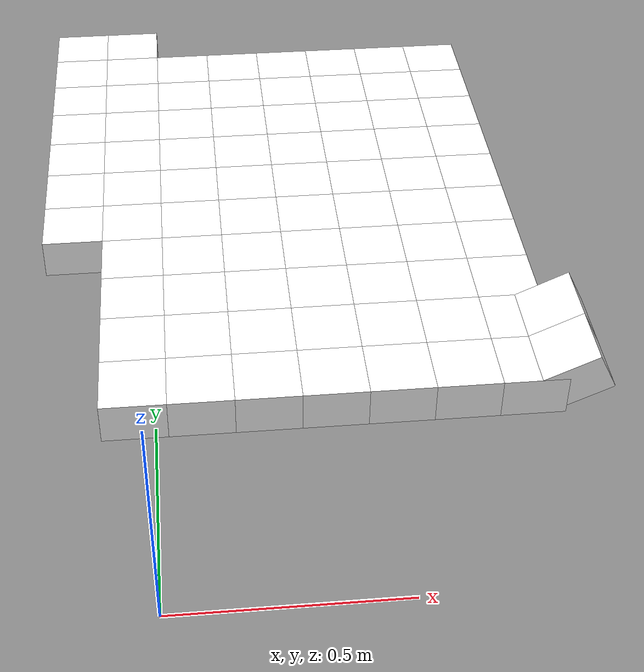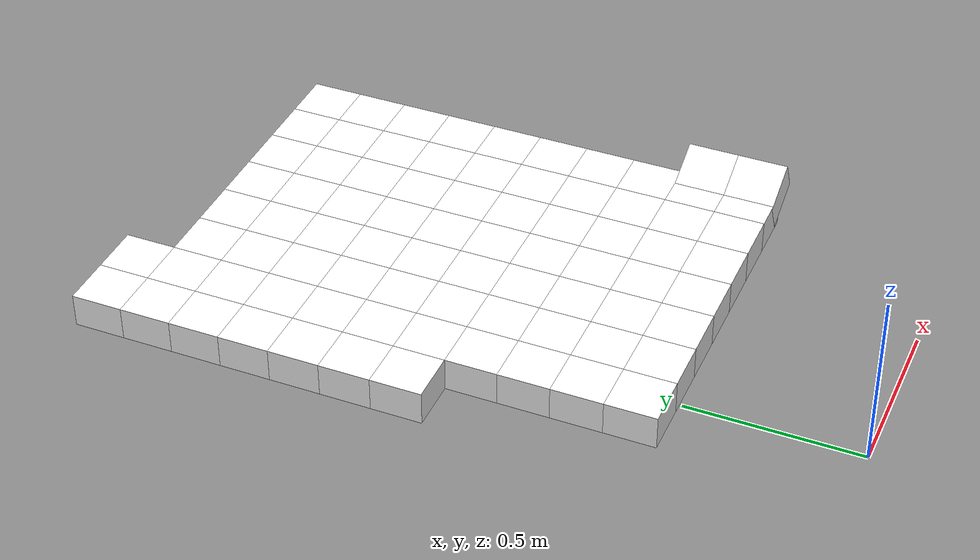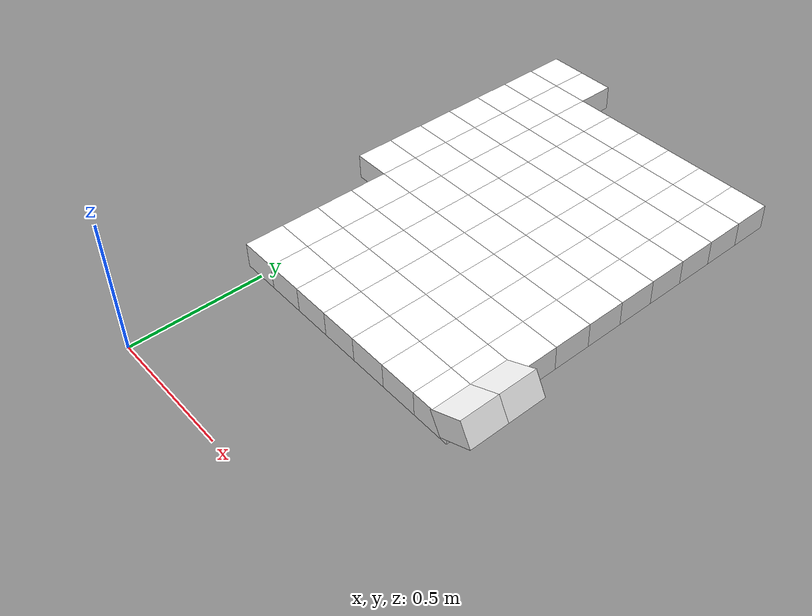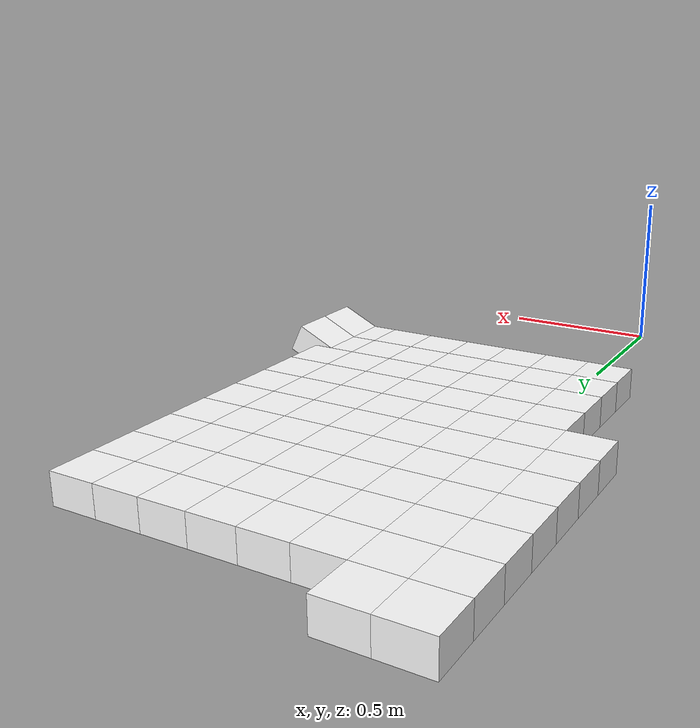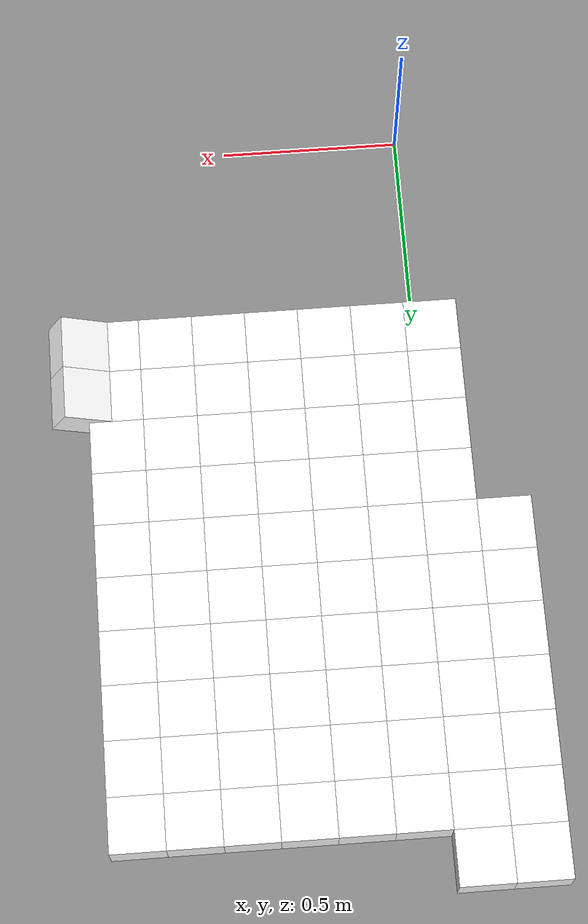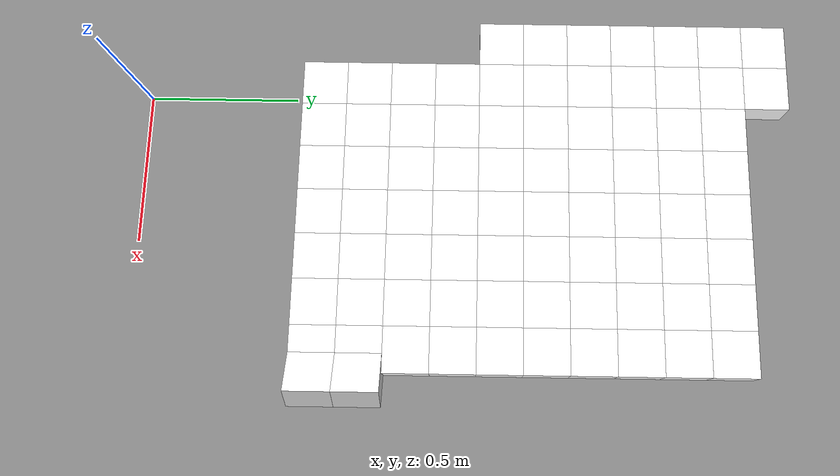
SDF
<sdf version="1.7">
 <world name="default">
  <include><uri>model://sun</uri></include>
  <model name="static_environment">
   <static>true</static>
   <link name="region_13">
    <pose>-0.05000000000000049 0.6 0.0 0.0 0.0 0.0</pose>
    <collision name="region_13_collision">
     <geometry><box><size>0.15 0.15 0.1</size></box></geometry>
     <surface><friction><ode><mu>1.0</mu><mu2>1.0</mu2></ode></friction></surface>
    </collision>
    <visual name="region_13_visual">
     <geometry><box><size>0.15 0.15 0.1</size></box></geometry>
     <material><ambient>1.0 1.0 1.0 1.0</ambient><diffuse>1.0 1.0 1.0 1.0</diffuse></material>
    </visual>
   </link>
   <link name="region_14">
    <pose>0.09999999999999964 0.6 0.0 0.0 0.0 0.0</pose>
    <collision name="region_14_collision">
     <geometry><box><size>0.15 0.15 0.1</size></box></geometry>
     <surface><friction><ode><mu>1.0</mu><mu2>1.0</mu2></ode></friction></surface>
    </collision>
    <visual name="region_14_visual">
     <geometry><box><size>0.15 0.15 0.1</size></box></geometry>
     <material><ambient>1.0 1.0 1.0 1.0</ambient><diffuse>1.0 1.0 1.0 1.0</diffuse></material>
    </visual>
   </link>
   <link name="region_15">
    <pose>0.24999999999999956 0.6 0.0 0.0 0.0 0.0</pose>
    <collision name="region_15_collision">
     <geometry><box><size>0.15 0.15 0.1</size></box></geometry>
     <surface><friction><ode><mu>1.0</mu><mu2>1.0</mu2></ode></friction></surface>
    </collision>
    <visual name="region_15_visual">
     <geometry><box><size>0.15 0.15 0.1</size></box></geometry>
     <material><ambient>1.0 1.0 1.0 1.0</ambient><diffuse>1.0 1.0 1.0 1.0</diffuse></material>
    </visual>
   </link>
   <link name="region_16">
    <pose>0.39999999999999947 0.6 0.0 0.0 0.0 0.0</pose>
    <collision name="region_16_collision">
     <geometry><box><size>0.15 0.15 0.1</size></box></geometry>
     <surface><friction><ode><mu>1.0</mu><mu2>1.0</mu2></ode></friction></surface>
    </collision>
    <visual name="region_16_visual">
     <geometry><box><size>0.15 0.15 0.1</size></box></geometry>
     <material><ambient>1.0 1.0 1.0 1.0</ambient><diffuse>1.0 1.0 1.0 1.0</diffuse></material>
    </visual>
   </link>
   <link name="region_17">
    <pose>0.5499999999999994 0.6 0.0 0.0 0.0 0.0</pose>
    <collision name="region_17_collision">
     <geometry><box><size>0.15 0.15 0.1</size></box></geometry>
     <surface><friction><ode><mu>1.0</mu><mu2>1.0</mu2></ode></friction></surface>
    </collision>
    <visual name="region_17_visual">
     <geometry><box><size>0.15 0.15 0.1</size></box></geometry>
     <material><ambient>1.0 1.0 1.0 1.0</ambient><diffuse>1.0 1.0 1.0 1.0</diffuse></material>
    </visual>
   </link>
   <link name="region_18">
    <pose>0.6999999999999993 0.6 0.0 0.0 0.0 0.0</pose>
    <collision name="region_18_collision">
     <geometry><box><size>0.15 0.15 0.1</size></box></geometry>
     <surface><friction><ode><mu>1.0</mu><mu2>1.0</mu2></ode></friction></surface>
    </collision>
    <visual name="region_18_visual">
     <geometry><box><size>0.15 0.15 0.1</size></box></geometry>
     <material><ambient>1.0 1.0 1.0 1.0</ambient><diffuse>1.0 1.0 1.0 1.0</diffuse></material>
    </visual>
   </link>
   <link name="region_19">
    <pose>0.8499999999999992 0.6 0.0 0.0 0.0 0.0</pose>
    <collision name="region_19_collision">
     <geometry><box><size>0.15 0.15 0.1</size></box></geometry>
     <surface><friction><ode><mu>1.0</mu><mu2>1.0</mu2></ode></friction></surface>
    </collision>
    <visual name="region_19_visual">
     <geometry><box><size>0.15 0.15 0.1</size></box></geometry>
     <material><ambient>1.0 1.0 1.0 1.0</ambient><diffuse>1.0 1.0 1.0 1.0</diffuse></material>
    </visual>
   </link>
   <link name="region_33">
    <pose>-0.05000000000000049 0.75 0.0 0.0 0.0 0.0</pose>
    <collision name="region_33_collision">
     <geometry><box><size>0.15 0.15 0.1</size></box></geometry>
     <surface><friction><ode><mu>1.0</mu><mu2>1.0</mu2></ode></friction></surface>
    </collision>
    <visual name="region_33_visual">
     <geometry><box><size>0.15 0.15 0.1</size></box></geometry>
     <material><ambient>1.0 1.0 1.0 1.0</ambient><diffuse>1.0 1.0 1.0 1.0</diffuse></material>
    </visual>
   </link>
   <link name="region_34">
    <pose>0.09999999999999964 0.75 0.0 0.0 0.0 0.0</pose>
    <collision name="region_34_collision">
     <geometry><box><size>0.15 0.15 0.1</size></box></geometry>
     <surface><friction><ode><mu>1.0</mu><mu2>1.0</mu2></ode></friction></surface>
    </collision>
    <visual name="region_34_visual">
     <geometry><box><size>0.15 0.15 0.1</size></box></geometry>
     <material><ambient>1.0 1.0 1.0 1.0</ambient><diffuse>1.0 1.0 1.0 1.0</diffuse></material>
    </visual>
   </link>
   <link name="region_35">
    <pose>0.24999999999999956 0.75 0.0 0.0 0.0 0.0</pose>
    <collision name="region_35_collision">
     <geometry><box><size>0.15 0.15 0.1</size></box></geometry>
     <surface><friction><ode><mu>1.0</mu><mu2>1.0</mu2></ode></friction></surface>
    </collision>
    <visual name="region_35_visual">
     <geometry><box><size>0.15 0.15 0.1</size></box></geometry>
     <material><ambient>1.0 1.0 1.0 1.0</ambient><diffuse>1.0 1.0 1.0 1.0</diffuse></material>
    </visual>
   </link>
   <link name="region_36">
    <pose>0.39999999999999947 0.75 0.0 0.0 0.0 0.0</pose>
    <collision name="region_36_collision">
     <geometry><box><size>0.15 0.15 0.1</size></box></geometry>
     <surface><friction><ode><mu>1.0</mu><mu2>1.0</mu2></ode></friction></surface>
    </collision>
    <visual name="region_36_visual">
     <geometry><box><size>0.15 0.15 0.1</size></box></geometry>
     <material><ambient>1.0 1.0 1.0 1.0</ambient><diffuse>1.0 1.0 1.0 1.0</diffuse></material>
    </visual>
   </link>
   <link name="region_37">
    <pose>0.5499999999999994 0.75 0.0 0.0 0.0 0.0</pose>
    <collision name="region_37_collision">
     <geometry><box><size>0.15 0.15 0.1</size></box></geometry>
     <surface><friction><ode><mu>1.0</mu><mu2>1.0</mu2></ode></friction></surface>
    </collision>
    <visual name="region_37_visual">
     <geometry><box><size>0.15 0.15 0.1</size></box></geometry>
     <material><ambient>1.0 1.0 1.0 1.0</ambient><diffuse>1.0 1.0 1.0 1.0</diffuse></material>
    </visual>
   </link>
   <link name="region_38">
    <pose>0.6999999999999993 0.75 0.0 0.0 0.0 0.0</pose>
    <collision name="region_38_collision">
     <geometry><box><size>0.15 0.15 0.1</size></box></geometry>
     <surface><friction><ode><mu>1.0</mu><mu2>1.0</mu2></ode></friction></surface>
    </collision>
    <visual name="region_38_visual">
     <geometry><box><size>0.15 0.15 0.1</size></box></geometry>
     <material><ambient>1.0 1.0 1.0 1.0</ambient><diffuse>1.0 1.0 1.0 1.0</diffuse></material>
    </visual>
   </link>
   <link name="region_39">
    <pose>0.8499999999999992 0.75 0.0 0.0 0.0 0.0</pose>
    <collision name="region_39_collision">
     <geometry><box><size>0.15 0.15 0.1</size></box></geometry>
     <surface><friction><ode><mu>1.0</mu><mu2>1.0</mu2></ode></friction></surface>
    </collision>
    <visual name="region_39_visual">
     <geometry><box><size>0.15 0.15 0.1</size></box></geometry>
     <material><ambient>1.0 1.0 1.0 1.0</ambient><diffuse>1.0 1.0 1.0 1.0</diffuse></material>
    </visual>
   </link>
   <link name="region_53">
    <pose>-0.05000000000000049 0.8999999999999999 0.0 0.0 0.0 0.0</pose>
    <collision name="region_53_collision">
     <geometry><box><size>0.15 0.15 0.1</size></box></geometry>
     <surface><friction><ode><mu>1.0</mu><mu2>1.0</mu2></ode></friction></surface>
    </collision>
    <visual name="region_53_visual">
     <geometry><box><size>0.15 0.15 0.1</size></box></geometry>
     <material><ambient>1.0 1.0 1.0 1.0</ambient><diffuse>1.0 1.0 1.0 1.0</diffuse></material>
    </visual>
   </link>
   <link name="region_54">
    <pose>0.09999999999999964 0.8999999999999999 0.0 0.0 0.0 0.0</pose>
    <collision name="region_54_collision">
     <geometry><box><size>0.15 0.15 0.1</size></box></geometry>
     <surface><friction><ode><mu>1.0</mu><mu2>1.0</mu2></ode></friction></surface>
    </collision>
    <visual name="region_54_visual">
     <geometry><box><size>0.15 0.15 0.1</size></box></geometry>
     <material><ambient>1.0 1.0 1.0 1.0</ambient><diffuse>1.0 1.0 1.0 1.0</diffuse></material>
    </visual>
   </link>
   <link name="region_55">
    <pose>0.24999999999999956 0.8999999999999999 0.0 0.0 0.0 0.0</pose>
    <collision name="region_55_collision">
     <geometry><box><size>0.15 0.15 0.1</size></box></geometry>
     <surface><friction><ode><mu>1.0</mu><mu2>1.0</mu2></ode></friction></surface>
    </collision>
    <visual name="region_55_visual">
     <geometry><box><size>0.15 0.15 0.1</size></box></geometry>
     <material><ambient>1.0 1.0 1.0 1.0</ambient><diffuse>1.0 1.0 1.0 1.0</diffuse></material>
    </visual>
   </link>
   <link name="region_56">
    <pose>0.39999999999999947 0.8999999999999999 0.0 0.0 0.0 0.0</pose>
    <collision name="region_56_collision">
     <geometry><box><size>0.15 0.15 0.1</size></box></geometry>
     <surface><friction><ode><mu>1.0</mu><mu2>1.0</mu2></ode></friction></surface>
    </collision>
    <visual name="region_56_visual">
     <geometry><box><size>0.15 0.15 0.1</size></box></geometry>
     <material><ambient>1.0 1.0 1.0 1.0</ambient><diffuse>1.0 1.0 1.0 1.0</diffuse></material>
    </visual>
   </link>
   <link name="region_57">
    <pose>0.5499999999999994 0.8999999999999999 0.0 0.0 0.0 0.0</pose>
    <collision name="region_57_collision">
     <geometry><box><size>0.15 0.15 0.1</size></box></geometry>
     <surface><friction><ode><mu>1.0</mu><mu2>1.0</mu2></ode></friction></surface>
    </collision>
    <visual name="region_57_visual">
     <geometry><box><size>0.15 0.15 0.1</size></box></geometry>
     <material><ambient>1.0 1.0 1.0 1.0</ambient><diffuse>1.0 1.0 1.0 1.0</diffuse></material>
    </visual>
   </link>
   <link name="region_58">
    <pose>0.6999999999999993 0.8999999999999999 0.0 0.0 0.0 0.0</pose>
    <collision name="region_58_collision">
     <geometry><box><size>0.15 0.15 0.1</size></box></geometry>
     <surface><friction><ode><mu>1.0</mu><mu2>1.0</mu2></ode></friction></surface>
    </collision>
    <visual name="region_58_visual">
     <geometry><box><size>0.15 0.15 0.1</size></box></geometry>
     <material><ambient>1.0 1.0 1.0 1.0</ambient><diffuse>1.0 1.0 1.0 1.0</diffuse></material>
    </visual>
   </link>
   <link name="region_59">
    <pose>0.8499999999999992 0.8999999999999999 0.0 0.0 0.0 0.0</pose>
    <collision name="region_59_collision">
     <geometry><box><size>0.15 0.15 0.1</size></box></geometry>
     <surface><friction><ode><mu>1.0</mu><mu2>1.0</mu2></ode></friction></surface>
    </collision>
    <visual name="region_59_visual">
     <geometry><box><size>0.15 0.15 0.1</size></box></geometry>
     <material><ambient>1.0 1.0 1.0 1.0</ambient><diffuse>1.0 1.0 1.0 1.0</diffuse></material>
    </visual>
   </link>
   <link name="region_73">
    <pose>-0.05000000000000049 1.0499999999999998 0.0 0.0 0.0 0.0</pose>
    <collision name="region_73_collision">
     <geometry><box><size>0.15 0.15 0.1</size></box></geometry>
     <surface><friction><ode><mu>1.0</mu><mu2>1.0</mu2></ode></friction></surface>
    </collision>
    <visual name="region_73_visual">
     <geometry><box><size>0.15 0.15 0.1</size></box></geometry>
     <material><ambient>1.0 1.0 1.0 1.0</ambient><diffuse>1.0 1.0 1.0 1.0</diffuse></material>
    </visual>
   </link>
   <link name="region_74">
    <pose>0.09999999999999964 1.0499999999999998 0.0 0.0 0.0 0.0</pose>
    <collision name="region_74_collision">
     <geometry><box><size>0.15 0.15 0.1</size></box></geometry>
     <surface><friction><ode><mu>1.0</mu><mu2>1.0</mu2></ode></friction></surface>
    </collision>
    <visual name="region_74_visual">
     <geometry><box><size>0.15 0.15 0.1</size></box></geometry>
     <material><ambient>1.0 1.0 1.0 1.0</ambient><diffuse>1.0 1.0 1.0 1.0</diffuse></material>
    </visual>
   </link>
   <link name="region_75">
    <pose>0.24999999999999956 1.0499999999999998 0.0 0.0 0.0 0.0</pose>
    <collision name="region_75_collision">
     <geometry><box><size>0.15 0.15 0.1</size></box></geometry>
     <surface><friction><ode><mu>1.0</mu><mu2>1.0</mu2></ode></friction></surface>
    </collision>
    <visual name="region_75_visual">
     <geometry><box><size>0.15 0.15 0.1</size></box></geometry>
     <material><ambient>1.0 1.0 1.0 1.0</ambient><diffuse>1.0 1.0 1.0 1.0</diffuse></material>
    </visual>
   </link>
   <link name="region_76">
    <pose>0.39999999999999947 1.0499999999999998 0.0 0.0 0.0 0.0</pose>
    <collision name="region_76_collision">
     <geometry><box><size>0.15 0.15 0.1</size></box></geometry>
     <surface><friction><ode><mu>1.0</mu><mu2>1.0</mu2></ode></friction></surface>
    </collision>
    <visual name="region_76_visual">
     <geometry><box><size>0.15 0.15 0.1</size></box></geometry>
     <material><ambient>1.0 1.0 1.0 1.0</ambient><diffuse>1.0 1.0 1.0 1.0</diffuse></material>
    </visual>
   </link>
   <link name="region_77">
    <pose>0.5499999999999994 1.0499999999999998 0.0 0.0 0.0 0.0</pose>
    <collision name="region_77_collision">
     <geometry><box><size>0.15 0.15 0.1</size></box></geometry>
     <surface><friction><ode><mu>1.0</mu><mu2>1.0</mu2></ode></friction></surface>
    </collision>
    <visual name="region_77_visual">
     <geometry><box><size>0.15 0.15 0.1</size></box></geometry>
     <material><ambient>1.0 1.0 1.0 1.0</ambient><diffuse>1.0 1.0 1.0 1.0</diffuse></material>
    </visual>
   </link>
   <link name="region_78">
    <pose>0.6999999999999993 1.0499999999999998 0.0 0.0 0.0 0.0</pose>
    <collision name="region_78_collision">
     <geometry><box><size>0.15 0.15 0.1</size></box></geometry>
     <surface><friction><ode><mu>1.0</mu><mu2>1.0</mu2></ode></friction></surface>
    </collision>
    <visual name="region_78_visual">
     <geometry><box><size>0.15 0.15 0.1</size></box></geometry>
     <material><ambient>1.0 1.0 1.0 1.0</ambient><diffuse>1.0 1.0 1.0 1.0</diffuse></material>
    </visual>
   </link>
   <link name="region_79">
    <pose>0.8499999999999992 1.0499999999999998 0.0 0.0 0.0 0.0</pose>
    <collision name="region_79_collision">
     <geometry><box><size>0.15 0.15 0.1</size></box></geometry>
     <surface><friction><ode><mu>1.0</mu><mu2>1.0</mu2></ode></friction></surface>
    </collision>
    <visual name="region_79_visual">
     <geometry><box><size>0.15 0.15 0.1</size></box></geometry>
     <material><ambient>1.0 1.0 1.0 1.0</ambient><diffuse>1.0 1.0 1.0 1.0</diffuse></material>
    </visual>
   </link>
   <link name="region_92">
    <pose>-0.2000000000000004 1.2 0.0 0.0 0.0 0.0</pose>
    <collision name="region_92_collision">
     <geometry><box><size>0.15 0.15 0.1</size></box></geometry>
     <surface><friction><ode><mu>1.0</mu><mu2>1.0</mu2></ode></friction></surface>
    </collision>
    <visual name="region_92_visual">
     <geometry><box><size>0.15 0.15 0.1</size></box></geometry>
     <material><ambient>1.0 1.0 1.0 1.0</ambient><diffuse>1.0 1.0 1.0 1.0</diffuse></material>
    </visual>
   </link>
   <link name="region_93">
    <pose>-0.05000000000000049 1.2 0.0 0.0 0.0 0.0</pose>
    <collision name="region_93_collision">
     <geometry><box><size>0.15 0.15 0.1</size></box></geometry>
     <surface><friction><ode><mu>1.0</mu><mu2>1.0</mu2></ode></friction></surface>
    </collision>
    <visual name="region_93_visual">
     <geometry><box><size>0.15 0.15 0.1</size></box></geometry>
     <material><ambient>1.0 1.0 1.0 1.0</ambient><diffuse>1.0 1.0 1.0 1.0</diffuse></material>
    </visual>
   </link>
   <link name="region_94">
    <pose>0.09999999999999964 1.2 0.0 0.0 0.0 0.0</pose>
    <collision name="region_94_collision">
     <geometry><box><size>0.15 0.15 0.1</size></box></geometry>
     <surface><friction><ode><mu>1.0</mu><mu2>1.0</mu2></ode></friction></surface>
    </collision>
    <visual name="region_94_visual">
     <geometry><box><size>0.15 0.15 0.1</size></box></geometry>
     <material><ambient>1.0 1.0 1.0 1.0</ambient><diffuse>1.0 1.0 1.0 1.0</diffuse></material>
    </visual>
   </link>
   <link name="region_95">
    <pose>0.24999999999999956 1.2 0.0 0.0 0.0 0.0</pose>
    <collision name="region_95_collision">
     <geometry><box><size>0.15 0.15 0.1</size></box></geometry>
     <surface><friction><ode><mu>1.0</mu><mu2>1.0</mu2></ode></friction></surface>
    </collision>
    <visual name="region_95_visual">
     <geometry><box><size>0.15 0.15 0.1</size></box></geometry>
     <material><ambient>1.0 1.0 1.0 1.0</ambient><diffuse>1.0 1.0 1.0 1.0</diffuse></material>
    </visual>
   </link>
   <link name="region_96">
    <pose>0.39999999999999947 1.2 0.0 0.0 0.0 0.0</pose>
    <collision name="region_96_collision">
     <geometry><box><size>0.15 0.15 0.1</size></box></geometry>
     <surface><friction><ode><mu>1.0</mu><mu2>1.0</mu2></ode></friction></surface>
    </collision>
    <visual name="region_96_visual">
     <geometry><box><size>0.15 0.15 0.1</size></box></geometry>
     <material><ambient>1.0 1.0 1.0 1.0</ambient><diffuse>1.0 1.0 1.0 1.0</diffuse></material>
    </visual>
   </link>
   <link name="region_97">
    <pose>0.5499999999999994 1.2 0.0 0.0 0.0 0.0</pose>
    <collision name="region_97_collision">
     <geometry><box><size>0.15 0.15 0.1</size></box></geometry>
     <surface><friction><ode><mu>1.0</mu><mu2>1.0</mu2></ode></friction></surface>
    </collision>
    <visual name="region_97_visual">
     <geometry><box><size>0.15 0.15 0.1</size></box></geometry>
     <material><ambient>1.0 1.0 1.0 1.0</ambient><diffuse>1.0 1.0 1.0 1.0</diffuse></material>
    </visual>
   </link>
   <link name="region_98">
    <pose>0.6999999999999993 1.2 0.0 0.0 0.0 0.0</pose>
    <collision name="region_98_collision">
     <geometry><box><size>0.15 0.15 0.1</size></box></geometry>
     <surface><friction><ode><mu>1.0</mu><mu2>1.0</mu2></ode></friction></surface>
    </collision>
    <visual name="region_98_visual">
     <geometry><box><size>0.15 0.15 0.1</size></box></geometry>
     <material><ambient>1.0 1.0 1.0 1.0</ambient><diffuse>1.0 1.0 1.0 1.0</diffuse></material>
    </visual>
   </link>
   <link name="region_99">
    <pose>0.8499999999999992 1.2 0.0 0.0 0.0 0.0</pose>
    <collision name="region_99_collision">
     <geometry><box><size>0.15 0.15 0.1</size></box></geometry>
     <surface><friction><ode><mu>1.0</mu><mu2>1.0</mu2></ode></friction></surface>
    </collision>
    <visual name="region_99_visual">
     <geometry><box><size>0.15 0.15 0.1</size></box></geometry>
     <material><ambient>1.0 1.0 1.0 1.0</ambient><diffuse>1.0 1.0 1.0 1.0</diffuse></material>
    </visual>
   </link>
   <link name="region_112">
    <pose>-0.2000000000000004 1.35 0.0 0.0 0.0 0.0</pose>
    <collision name="region_112_collision">
     <geometry><box><size>0.15 0.15 0.1</size></box></geometry>
     <surface><friction><ode><mu>1.0</mu><mu2>1.0</mu2></ode></friction></surface>
    </collision>
    <visual name="region_112_visual">
     <geometry><box><size>0.15 0.15 0.1</size></box></geometry>
     <material><ambient>1.0 1.0 1.0 1.0</ambient><diffuse>1.0 1.0 1.0 1.0</diffuse></material>
    </visual>
   </link>
   <link name="region_113">
    <pose>-0.05000000000000049 1.35 0.0 0.0 0.0 0.0</pose>
    <collision name="region_113_collision">
     <geometry><box><size>0.15 0.15 0.1</size></box></geometry>
     <surface><friction><ode><mu>1.0</mu><mu2>1.0</mu2></ode></friction></surface>
    </collision>
    <visual name="region_113_visual">
     <geometry><box><size>0.15 0.15 0.1</size></box></geometry>
     <material><ambient>1.0 1.0 1.0 1.0</ambient><diffuse>1.0 1.0 1.0 1.0</diffuse></material>
    </visual>
   </link>
   <link name="region_114">
    <pose>0.09999999999999964 1.35 0.0 0.0 0.0 0.0</pose>
    <collision name="region_114_collision">
     <geometry><box><size>0.15 0.15 0.1</size></box></geometry>
     <surface><friction><ode><mu>1.0</mu><mu2>1.0</mu2></ode></friction></surface>
    </collision>
    <visual name="region_114_visual">
     <geometry><box><size>0.15 0.15 0.1</size></box></geometry>
     <material><ambient>1.0 1.0 1.0 1.0</ambient><diffuse>1.0 1.0 1.0 1.0</diffuse></material>
    </visual>
   </link>
   <link name="region_115">
    <pose>0.24999999999999956 1.35 0.0 0.0 0.0 0.0</pose>
    <collision name="region_115_collision">
     <geometry><box><size>0.15 0.15 0.1</size></box></geometry>
     <surface><friction><ode><mu>1.0</mu><mu2>1.0</mu2></ode></friction></surface>
    </collision>
    <visual name="region_115_visual">
     <geometry><box><size>0.15 0.15 0.1</size></box></geometry>
     <material><ambient>1.0 1.0 1.0 1.0</ambient><diffuse>1.0 1.0 1.0 1.0</diffuse></material>
    </visual>
   </link>
   <link name="region_116">
    <pose>0.39999999999999947 1.35 0.0 0.0 0.0 0.0</pose>
    <collision name="region_116_collision">
     <geometry><box><size>0.15 0.15 0.1</size></box></geometry>
     <surface><friction><ode><mu>1.0</mu><mu2>1.0</mu2></ode></friction></surface>
    </collision>
    <visual name="region_116_visual">
     <geometry><box><size>0.15 0.15 0.1</size></box></geometry>
     <material><ambient>1.0 1.0 1.0 1.0</ambient><diffuse>1.0 1.0 1.0 1.0</diffuse></material>
    </visual>
   </link>
   <link name="region_117">
    <pose>0.5499999999999994 1.35 0.0 0.0 0.0 0.0</pose>
    <collision name="region_117_collision">
     <geometry><box><size>0.15 0.15 0.1</size></box></geometry>
     <surface><friction><ode><mu>1.0</mu><mu2>1.0</mu2></ode></friction></surface>
    </collision>
    <visual name="region_117_visual">
     <geometry><box><size>0.15 0.15 0.1</size></box></geometry>
     <material><ambient>1.0 1.0 1.0 1.0</ambient><diffuse>1.0 1.0 1.0 1.0</diffuse></material>
    </visual>
   </link>
   <link name="region_118">
    <pose>0.6999999999999993 1.35 0.0 0.0 0.0 0.0</pose>
    <collision name="region_118_collision">
     <geometry><box><size>0.15 0.15 0.1</size></box></geometry>
     <surface><friction><ode><mu>1.0</mu><mu2>1.0</mu2></ode></friction></surface>
    </collision>
    <visual name="region_118_visual">
     <geometry><box><size>0.15 0.15 0.1</size></box></geometry>
     <material><ambient>1.0 1.0 1.0 1.0</ambient><diffuse>1.0 1.0 1.0 1.0</diffuse></material>
    </visual>
   </link>
   <link name="region_119">
    <pose>0.8499999999999992 1.35 0.0 0.0 0.0 0.0</pose>
    <collision name="region_119_collision">
     <geometry><box><size>0.15 0.15 0.1</size></box></geometry>
     <surface><friction><ode><mu>1.0</mu><mu2>1.0</mu2></ode></friction></surface>
    </collision>
    <visual name="region_119_visual">
     <geometry><box><size>0.15 0.15 0.1</size></box></geometry>
     <material><ambient>1.0 1.0 1.0 1.0</ambient><diffuse>1.0 1.0 1.0 1.0</diffuse></material>
    </visual>
   </link>
   <link name="region_132">
    <pose>-0.2000000000000004 1.5 0.0 0.0 0.0 0.0</pose>
    <collision name="region_132_collision">
     <geometry><box><size>0.15 0.15 0.1</size></box></geometry>
     <surface><friction><ode><mu>1.0</mu><mu2>1.0</mu2></ode></friction></surface>
    </collision>
    <visual name="region_132_visual">
     <geometry><box><size>0.15 0.15 0.1</size></box></geometry>
     <material><ambient>1.0 1.0 1.0 1.0</ambient><diffuse>1.0 1.0 1.0 1.0</diffuse></material>
    </visual>
   </link>
   <link name="region_133">
    <pose>-0.05000000000000049 1.5 0.0 0.0 0.0 0.0</pose>
    <collision name="region_133_collision">
     <geometry><box><size>0.15 0.15 0.1</size></box></geometry>
     <surface><friction><ode><mu>1.0</mu><mu2>1.0</mu2></ode></friction></surface>
    </collision>
    <visual name="region_133_visual">
     <geometry><box><size>0.15 0.15 0.1</size></box></geometry>
     <material><ambient>1.0 1.0 1.0 1.0</ambient><diffuse>1.0 1.0 1.0 1.0</diffuse></material>
    </visual>
   </link>
   <link name="region_134">
    <pose>0.09999999999999964 1.5 0.0 0.0 0.0 0.0</pose>
    <collision name="region_134_collision">
     <geometry><box><size>0.15 0.15 0.1</size></box></geometry>
     <surface><friction><ode><mu>1.0</mu><mu2>1.0</mu2></ode></friction></surface>
    </collision>
    <visual name="region_134_visual">
     <geometry><box><size>0.15 0.15 0.1</size></box></geometry>
     <material><ambient>1.0 1.0 1.0 1.0</ambient><diffuse>1.0 1.0 1.0 1.0</diffuse></material>
    </visual>
   </link>
   <link name="region_135">
    <pose>0.24999999999999956 1.5 0.0 0.0 0.0 0.0</pose>
    <collision name="region_135_collision">
     <geometry><box><size>0.15 0.15 0.1</size></box></geometry>
     <surface><friction><ode><mu>1.0</mu><mu2>1.0</mu2></ode></friction></surface>
    </collision>
    <visual name="region_135_visual">
     <geometry><box><size>0.15 0.15 0.1</size></box></geometry>
     <material><ambient>1.0 1.0 1.0 1.0</ambient><diffuse>1.0 1.0 1.0 1.0</diffuse></material>
    </visual>
   </link>
   <link name="region_136">
    <pose>0.39999999999999947 1.5 0.0 0.0 0.0 0.0</pose>
    <collision name="region_136_collision">
     <geometry><box><size>0.15 0.15 0.1</size></box></geometry>
     <surface><friction><ode><mu>1.0</mu><mu2>1.0</mu2></ode></friction></surface>
    </collision>
    <visual name="region_136_visual">
     <geometry><box><size>0.15 0.15 0.1</size></box></geometry>
     <material><ambient>1.0 1.0 1.0 1.0</ambient><diffuse>1.0 1.0 1.0 1.0</diffuse></material>
    </visual>
   </link>
   <link name="region_137">
    <pose>0.5499999999999994 1.5 0.0 0.0 0.0 0.0</pose>
    <collision name="region_137_collision">
     <geometry><box><size>0.15 0.15 0.1</size></box></geometry>
     <surface><friction><ode><mu>1.0</mu><mu2>1.0</mu2></ode></friction></surface>
    </collision>
    <visual name="region_137_visual">
     <geometry><box><size>0.15 0.15 0.1</size></box></geometry>
     <material><ambient>1.0 1.0 1.0 1.0</ambient><diffuse>1.0 1.0 1.0 1.0</diffuse></material>
    </visual>
   </link>
   <link name="region_138">
    <pose>0.6999999999999993 1.5 0.0 0.0 0.0 0.0</pose>
    <collision name="region_138_collision">
     <geometry><box><size>0.15 0.15 0.1</size></box></geometry>
     <surface><friction><ode><mu>1.0</mu><mu2>1.0</mu2></ode></friction></surface>
    </collision>
    <visual name="region_138_visual">
     <geometry><box><size>0.15 0.15 0.1</size></box></geometry>
     <material><ambient>1.0 1.0 1.0 1.0</ambient><diffuse>1.0 1.0 1.0 1.0</diffuse></material>
    </visual>
   </link>
   <link name="region_139">
    <pose>0.8499999999999992 1.5 0.0 0.0 0.0 0.0</pose>
    <collision name="region_139_collision">
     <geometry><box><size>0.15 0.15 0.1</size></box></geometry>
     <surface><friction><ode><mu>1.0</mu><mu2>1.0</mu2></ode></friction></surface>
    </collision>
    <visual name="region_139_visual">
     <geometry><box><size>0.15 0.15 0.1</size></box></geometry>
     <material><ambient>1.0 1.0 1.0 1.0</ambient><diffuse>1.0 1.0 1.0 1.0</diffuse></material>
    </visual>
   </link>
   <link name="region_152">
    <pose>-0.2000000000000004 1.65 0.0 0.0 0.0 0.0</pose>
    <collision name="region_152_collision">
     <geometry><box><size>0.15 0.15 0.1</size></box></geometry>
     <surface><friction><ode><mu>1.0</mu><mu2>1.0</mu2></ode></friction></surface>
    </collision>
    <visual name="region_152_visual">
     <geometry><box><size>0.15 0.15 0.1</size></box></geometry>
     <material><ambient>1.0 1.0 1.0 1.0</ambient><diffuse>1.0 1.0 1.0 1.0</diffuse></material>
    </visual>
   </link>
   <link name="region_153">
    <pose>-0.05000000000000049 1.65 0.0 0.0 0.0 0.0</pose>
    <collision name="region_153_collision">
     <geometry><box><size>0.15 0.15 0.1</size></box></geometry>
     <surface><friction><ode><mu>1.0</mu><mu2>1.0</mu2></ode></friction></surface>
    </collision>
    <visual name="region_153_visual">
     <geometry><box><size>0.15 0.15 0.1</size></box></geometry>
     <material><ambient>1.0 1.0 1.0 1.0</ambient><diffuse>1.0 1.0 1.0 1.0</diffuse></material>
    </visual>
   </link>
   <link name="region_154">
    <pose>0.09999999999999964 1.65 0.0 0.0 0.0 0.0</pose>
    <collision name="region_154_collision">
     <geometry><box><size>0.15 0.15 0.1</size></box></geometry>
     <surface><friction><ode><mu>1.0</mu><mu2>1.0</mu2></ode></friction></surface>
    </collision>
    <visual name="region_154_visual">
     <geometry><box><size>0.15 0.15 0.1</size></box></geometry>
     <material><ambient>1.0 1.0 1.0 1.0</ambient><diffuse>1.0 1.0 1.0 1.0</diffuse></material>
    </visual>
   </link>
   <link name="region_155">
    <pose>0.24999999999999956 1.65 0.0 0.0 0.0 0.0</pose>
    <collision name="region_155_collision">
     <geometry><box><size>0.15 0.15 0.1</size></box></geometry>
     <surface><friction><ode><mu>1.0</mu><mu2>1.0</mu2></ode></friction></surface>
    </collision>
    <visual name="region_155_visual">
     <geometry><box><size>0.15 0.15 0.1</size></box></geometry>
     <material><ambient>1.0 1.0 1.0 1.0</ambient><diffuse>1.0 1.0 1.0 1.0</diffuse></material>
    </visual>
   </link>
   <link name="region_156">
    <pose>0.39999999999999947 1.65 0.0 0.0 0.0 0.0</pose>
    <collision name="region_156_collision">
     <geometry><box><size>0.15 0.15 0.1</size></box></geometry>
     <surface><friction><ode><mu>1.0</mu><mu2>1.0</mu2></ode></friction></surface>
    </collision>
    <visual name="region_156_visual">
     <geometry><box><size>0.15 0.15 0.1</size></box></geometry>
     <material><ambient>1.0 1.0 1.0 1.0</ambient><diffuse>1.0 1.0 1.0 1.0</diffuse></material>
    </visual>
   </link>
   <link name="region_157">
    <pose>0.5499999999999994 1.65 0.0 0.0 0.0 0.0</pose>
    <collision name="region_157_collision">
     <geometry><box><size>0.15 0.15 0.1</size></box></geometry>
     <surface><friction><ode><mu>1.0</mu><mu2>1.0</mu2></ode></friction></surface>
    </collision>
    <visual name="region_157_visual">
     <geometry><box><size>0.15 0.15 0.1</size></box></geometry>
     <material><ambient>1.0 1.0 1.0 1.0</ambient><diffuse>1.0 1.0 1.0 1.0</diffuse></material>
    </visual>
   </link>
   <link name="region_158">
    <pose>0.6999999999999993 1.65 0.0 0.0 0.0 0.0</pose>
    <collision name="region_158_collision">
     <geometry><box><size>0.15 0.15 0.1</size></box></geometry>
     <surface><friction><ode><mu>1.0</mu><mu2>1.0</mu2></ode></friction></surface>
    </collision>
    <visual name="region_158_visual">
     <geometry><box><size>0.15 0.15 0.1</size></box></geometry>
     <material><ambient>1.0 1.0 1.0 1.0</ambient><diffuse>1.0 1.0 1.0 1.0</diffuse></material>
    </visual>
   </link>
   <link name="region_159">
    <pose>0.8499999999999992 1.65 0.0 0.0 0.0 0.0</pose>
    <collision name="region_159_collision">
     <geometry><box><size>0.15 0.15 0.1</size></box></geometry>
     <surface><friction><ode><mu>1.0</mu><mu2>1.0</mu2></ode></friction></surface>
    </collision>
    <visual name="region_159_visual">
     <geometry><box><size>0.15 0.15 0.1</size></box></geometry>
     <material><ambient>1.0 1.0 1.0 1.0</ambient><diffuse>1.0 1.0 1.0 1.0</diffuse></material>
    </visual>
   </link>
   <link name="region_172">
    <pose>-0.2000000000000004 1.7999999999999998 0.0 0.0 0.0 0.0</pose>
    <collision name="region_172_collision">
     <geometry><box><size>0.15 0.15 0.1</size></box></geometry>
     <surface><friction><ode><mu>1.0</mu><mu2>1.0</mu2></ode></friction></surface>
    </collision>
    <visual name="region_172_visual">
     <geometry><box><size>0.15 0.15 0.1</size></box></geometry>
     <material><ambient>1.0 1.0 1.0 1.0</ambient><diffuse>1.0 1.0 1.0 1.0</diffuse></material>
    </visual>
   </link>
   <link name="region_173">
    <pose>-0.05000000000000049 1.7999999999999998 0.0 0.0 0.0 0.0</pose>
    <collision name="region_173_collision">
     <geometry><box><size>0.15 0.15 0.1</size></box></geometry>
     <surface><friction><ode><mu>1.0</mu><mu2>1.0</mu2></ode></friction></surface>
    </collision>
    <visual name="region_173_visual">
     <geometry><box><size>0.15 0.15 0.1</size></box></geometry>
     <material><ambient>1.0 1.0 1.0 1.0</ambient><diffuse>1.0 1.0 1.0 1.0</diffuse></material>
    </visual>
   </link>
   <link name="region_174">
    <pose>0.09999999999999964 1.7999999999999998 0.0 0.0 0.0 0.0</pose>
    <collision name="region_174_collision">
     <geometry><box><size>0.15 0.15 0.1</size></box></geometry>
     <surface><friction><ode><mu>1.0</mu><mu2>1.0</mu2></ode></friction></surface>
    </collision>
    <visual name="region_174_visual">
     <geometry><box><size>0.15 0.15 0.1</size></box></geometry>
     <material><ambient>1.0 1.0 1.0 1.0</ambient><diffuse>1.0 1.0 1.0 1.0</diffuse></material>
    </visual>
   </link>
   <link name="region_175">
    <pose>0.24999999999999956 1.7999999999999998 0.0 0.0 0.0 0.0</pose>
    <collision name="region_175_collision">
     <geometry><box><size>0.15 0.15 0.1</size></box></geometry>
     <surface><friction><ode><mu>1.0</mu><mu2>1.0</mu2></ode></friction></surface>
    </collision>
    <visual name="region_175_visual">
     <geometry><box><size>0.15 0.15 0.1</size></box></geometry>
     <material><ambient>1.0 1.0 1.0 1.0</ambient><diffuse>1.0 1.0 1.0 1.0</diffuse></material>
    </visual>
   </link>
   <link name="region_176">
    <pose>0.39999999999999947 1.7999999999999998 0.0 0.0 0.0 0.0</pose>
    <collision name="region_176_collision">
     <geometry><box><size>0.15 0.15 0.1</size></box></geometry>
     <surface><friction><ode><mu>1.0</mu><mu2>1.0</mu2></ode></friction></surface>
    </collision>
    <visual name="region_176_visual">
     <geometry><box><size>0.15 0.15 0.1</size></box></geometry>
     <material><ambient>1.0 1.0 1.0 1.0</ambient><diffuse>1.0 1.0 1.0 1.0</diffuse></material>
    </visual>
   </link>
   <link name="region_177">
    <pose>0.5499999999999994 1.7999999999999998 0.0 0.0 0.0 0.0</pose>
    <collision name="region_177_collision">
     <geometry><box><size>0.15 0.15 0.1</size></box></geometry>
     <surface><friction><ode><mu>1.0</mu><mu2>1.0</mu2></ode></friction></surface>
    </collision>
    <visual name="region_177_visual">
     <geometry><box><size>0.15 0.15 0.1</size></box></geometry>
     <material><ambient>1.0 1.0 1.0 1.0</ambient><diffuse>1.0 1.0 1.0 1.0</diffuse></material>
    </visual>
   </link>
   <link name="region_178">
    <pose>0.6999999999999993 1.7999999999999998 0.0 0.0 0.0 0.0</pose>
    <collision name="region_178_collision">
     <geometry><box><size>0.15 0.15 0.1</size></box></geometry>
     <surface><friction><ode><mu>1.0</mu><mu2>1.0</mu2></ode></friction></surface>
    </collision>
    <visual name="region_178_visual">
     <geometry><box><size>0.15 0.15 0.1</size></box></geometry>
     <material><ambient>1.0 1.0 1.0 1.0</ambient><diffuse>1.0 1.0 1.0 1.0</diffuse></material>
    </visual>
   </link>
   <link name="region_179">
    <pose>0.8499999999999992 1.7999999999999998 0.0 0.0 0.0 0.0</pose>
    <collision name="region_179_collision">
     <geometry><box><size>0.15 0.15 0.1</size></box></geometry>
     <surface><friction><ode><mu>1.0</mu><mu2>1.0</mu2></ode></friction></surface>
    </collision>
    <visual name="region_179_visual">
     <geometry><box><size>0.15 0.15 0.1</size></box></geometry>
     <material><ambient>1.0 1.0 1.0 1.0</ambient><diffuse>1.0 1.0 1.0 1.0</diffuse></material>
    </visual>
   </link>
   <link name="region_192">
    <pose>-0.2000000000000004 1.9499999999999997 0.0 0.0 0.0 0.0</pose>
    <collision name="region_192_collision">
     <geometry><box><size>0.15 0.15 0.1</size></box></geometry>
     <surface><friction><ode><mu>1.0</mu><mu2>1.0</mu2></ode></friction></surface>
    </collision>
    <visual name="region_192_visual">
     <geometry><box><size>0.15 0.15 0.1</size></box></geometry>
     <material><ambient>1.0 1.0 1.0 1.0</ambient><diffuse>1.0 1.0 1.0 1.0</diffuse></material>
    </visual>
   </link>
   <link name="region_193">
    <pose>-0.05000000000000049 1.9499999999999997 0.0 0.0 0.0 0.0</pose>
    <collision name="region_193_collision">
     <geometry><box><size>0.15 0.15 0.1</size></box></geometry>
     <surface><friction><ode><mu>1.0</mu><mu2>1.0</mu2></ode></friction></surface>
    </collision>
    <visual name="region_193_visual">
     <geometry><box><size>0.15 0.15 0.1</size></box></geometry>
     <material><ambient>1.0 1.0 1.0 1.0</ambient><diffuse>1.0 1.0 1.0 1.0</diffuse></material>
    </visual>
   </link>
   <link name="region_194">
    <pose>0.09999999999999964 1.9499999999999997 0.0 0.0 0.0 0.0</pose>
    <collision name="region_194_collision">
     <geometry><box><size>0.15 0.15 0.1</size></box></geometry>
     <surface><friction><ode><mu>1.0</mu><mu2>1.0</mu2></ode></friction></surface>
    </collision>
    <visual name="region_194_visual">
     <geometry><box><size>0.15 0.15 0.1</size></box></geometry>
     <material><ambient>1.0 1.0 1.0 1.0</ambient><diffuse>1.0 1.0 1.0 1.0</diffuse></material>
    </visual>
   </link>
   <link name="region_195">
    <pose>0.24999999999999956 1.9499999999999997 0.0 0.0 0.0 0.0</pose>
    <collision name="region_195_collision">
     <geometry><box><size>0.15 0.15 0.1</size></box></geometry>
     <surface><friction><ode><mu>1.0</mu><mu2>1.0</mu2></ode></friction></surface>
    </collision>
    <visual name="region_195_visual">
     <geometry><box><size>0.15 0.15 0.1</size></box></geometry>
     <material><ambient>1.0 1.0 1.0 1.0</ambient><diffuse>1.0 1.0 1.0 1.0</diffuse></material>
    </visual>
   </link>
   <link name="region_196">
    <pose>0.39999999999999947 1.9499999999999997 0.0 0.0 0.0 0.0</pose>
    <collision name="region_196_collision">
     <geometry><box><size>0.15 0.15 0.1</size></box></geometry>
     <surface><friction><ode><mu>1.0</mu><mu2>1.0</mu2></ode></friction></surface>
    </collision>
    <visual name="region_196_visual">
     <geometry><box><size>0.15 0.15 0.1</size></box></geometry>
     <material><ambient>1.0 1.0 1.0 1.0</ambient><diffuse>1.0 1.0 1.0 1.0</diffuse></material>
    </visual>
   </link>
   <link name="region_197">
    <pose>0.5499999999999994 1.9499999999999997 0.0 0.0 0.0 0.0</pose>
    <collision name="region_197_collision">
     <geometry><box><size>0.15 0.15 0.1</size></box></geometry>
     <surface><friction><ode><mu>1.0</mu><mu2>1.0</mu2></ode></friction></surface>
    </collision>
    <visual name="region_197_visual">
     <geometry><box><size>0.15 0.15 0.1</size></box></geometry>
     <material><ambient>1.0 1.0 1.0 1.0</ambient><diffuse>1.0 1.0 1.0 1.0</diffuse></material>
    </visual>
   </link>
   <link name="region_198">
    <pose>0.6999999999999993 1.9499999999999997 0.0 0.0 0.0 0.0</pose>
    <collision name="region_198_collision">
     <geometry><box><size>0.15 0.15 0.1</size></box></geometry>
     <surface><friction><ode><mu>1.0</mu><mu2>1.0</mu2></ode></friction></surface>
    </collision>
    <visual name="region_198_visual">
     <geometry><box><size>0.15 0.15 0.1</size></box></geometry>
     <material><ambient>1.0 1.0 1.0 1.0</ambient><diffuse>1.0 1.0 1.0 1.0</diffuse></material>
    </visual>
   </link>
   <link name="region_199">
    <pose>0.8499999999999992 1.9499999999999997 0.0 0.0 0.0 0.0</pose>
    <collision name="region_199_collision">
     <geometry><box><size>0.15 0.15 0.1</size></box></geometry>
     <surface><friction><ode><mu>1.0</mu><mu2>1.0</mu2></ode></friction></surface>
    </collision>
    <visual name="region_199_visual">
     <geometry><box><size>0.15 0.15 0.1</size></box></geometry>
     <material><ambient>1.0 1.0 1.0 1.0</ambient><diffuse>1.0 1.0 1.0 1.0</diffuse></material>
    </visual>
   </link>
   <link name="region_212">
    <pose>-0.2000000000000004 2.0999999999999996 0.0 0.0 0.0 0.0</pose>
    <collision name="region_212_collision">
     <geometry><box><size>0.15 0.15 0.1</size></box></geometry>
     <surface><friction><ode><mu>1.0</mu><mu2>1.0</mu2></ode></friction></surface>
    </collision>
    <visual name="region_212_visual">
     <geometry><box><size>0.15 0.15 0.1</size></box></geometry>
     <material><ambient>1.0 1.0 1.0 1.0</ambient><diffuse>1.0 1.0 1.0 1.0</diffuse></material>
    </visual>
   </link>
   <link name="region_213">
    <pose>-0.05000000000000049 2.0999999999999996 0.0 0.0 0.0 0.0</pose>
    <collision name="region_213_collision">
     <geometry><box><size>0.15 0.15 0.1</size></box></geometry>
     <surface><friction><ode><mu>1.0</mu><mu2>1.0</mu2></ode></friction></surface>
    </collision>
    <visual name="region_213_visual">
     <geometry><box><size>0.15 0.15 0.1</size></box></geometry>
     <material><ambient>1.0 1.0 1.0 1.0</ambient><diffuse>1.0 1.0 1.0 1.0</diffuse></material>
    </visual>
   </link>
   <link name="region_400">
    <pose>0.9411473276530398 0.6 0.03253685663030448 0.0 -0.45 0.0</pose>
    <collision name="region_400_collision">
     <geometry><box><size>0.15 0.15 0.1</size></box></geometry>
     <surface><friction><ode><mu>1.0</mu><mu2>1.0</mu2></ode></friction></surface>
    </collision>
    <visual name="region_400_visual">
     <geometry><box><size>0.15 0.15 0.1</size></box></geometry>
     <material><ambient>1.0 1.0 1.0 1.0</ambient><diffuse>1.0 1.0 1.0 1.0</diffuse></material>
    </visual>
   </link>
   <link name="region_420">
    <pose>0.9411473276530398 0.75 0.03253685663030448 0.0 -0.45 0.0</pose>
    <collision name="region_420_collision">
     <geometry><box><size>0.15 0.15 0.1</size></box></geometry>
     <surface><friction><ode><mu>1.0</mu><mu2>1.0</mu2></ode></friction></surface>
    </collision>
    <visual name="region_420_visual">
     <geometry><box><size>0.15 0.15 0.1</size></box></geometry>
     <material><ambient>1.0 1.0 1.0 1.0</ambient><diffuse>1.0 1.0 1.0 1.0</diffuse></material>
    </visual>
   </link>
  </model>
 </world>
</sdf>
